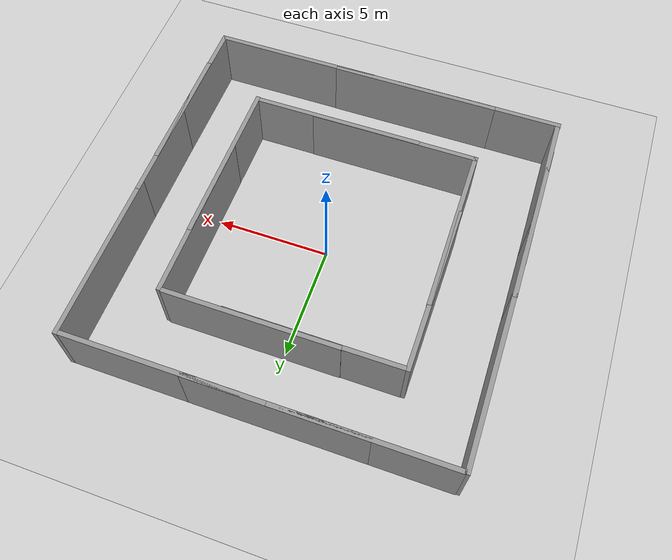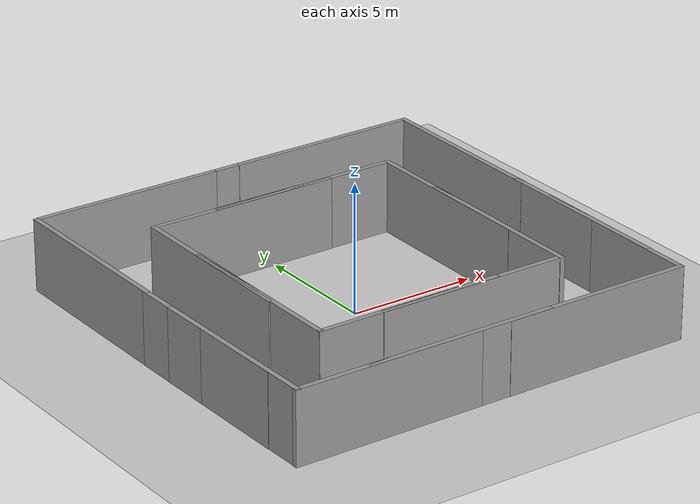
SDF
<sdf version="1.6">
 <world name="default">
  <light name="sun" type="directional">
   <pose>0 0 10 0 -0 0</pose>
   <diffuse>0.8 0.8 0.8 1</diffuse>
   <specular>0.1 0.1 0.1 1</specular>
   <attenuation>
    <range>1000</range>
    <constant>0.9</constant>
    <linear>0.01</linear>
    <quadratic>0.001</quadratic>
   </attenuation>
   <direction>-0.5 0.5 -1</direction>
  </light>
  <model name="ground_plane">
   <static>1</static>
   <link name="link">
    <collision name="collision">
     <geometry><plane><normal>0 0 1</normal><size>100 100</size></plane></geometry>
     <surface><friction><ode><mu>100</mu><mu2>50</mu2></ode></friction></surface>
    </collision>
    <visual name="visual">
     <cast_shadows>0</cast_shadows>
     <geometry><plane><normal>0 0 1</normal><size>100 100</size></plane></geometry>
     <material>
      <script><uri>file://media/materials/scripts/gazebo.material</uri><name>Gazebo/Grey</name></script>
     </material>
    </visual>
   </link>
  </model>
  <gravity>0 0 -9.8</gravity>
  <magnetic_field>6e-06 2.3e-05 -4.2e-05</magnetic_field>
  <atmosphere type="adiabatic"/>
  <physics name="default_physics" default="0" type="ode">
   <max_step_size>0.001</max_step_size>
   <real_time_factor>1</real_time_factor>
   <real_time_update_rate>1000</real_time_update_rate>
  </physics>
  <scene><ambient>0.4 0.4 0.4 1</ambient><background>0.7 0.7 0.7 1</background><shadows>1</shadows></scene>
  <spherical_coordinates>
   <surface_model>EARTH_WGS84</surface_model>
   <latitude_deg>0</latitude_deg>
   <longitude_deg>0</longitude_deg>
   <elevation>0</elevation>
   <heading_deg>0</heading_deg>
  </spherical_coordinates>
  <model name="grey_wall">
   <static>1</static>
   <link name="link">
    <pose>0 0 1.4 0 -0 0</pose>
    <collision name="collision"><geometry><box><size>7.5 0.2 2.8</size></box></geometry></collision>
    <visual name="visual">
     <cast_shadows>0</cast_shadows>
     <geometry><box><size>7.5 0.2 2.8</size></box></geometry>
     <material>
      <script>
       <uri>model://grey_wall/materials/scripts</uri>
       <uri>model://grey_wall/materials/textures</uri>
       <name>vrc/grey_wall</name>
      </script>
     </material>
    </visual>
   </link>
   <pose>1.31352 5.13782 0 0 -0 0</pose>
  </model>
  <model name="grey_wall_0">
   <static>1</static>
   <link name="link">
    <pose>0 0 1.4 0 -0 0</pose>
    <collision name="collision"><geometry><box><size>7.5 0.2 2.8</size></box></geometry></collision>
    <visual name="visual">
     <cast_shadows>0</cast_shadows>
     <geometry><box><size>7.5 0.2 2.8</size></box></geometry>
     <material>
      <script>
       <uri>model://grey_wall/materials/scripts</uri>
       <uri>model://grey_wall/materials/textures</uri>
       <name>vrc/grey_wall</name>
      </script>
     </material>
    </visual>
   </link>
   <pose>-1.21491 5.11681 0 0 -0 0</pose>
  </model>
  <model name="grey_wall_1">
   <static>1</static>
   <link name="link">
    <pose>0 0 1.4 0 -0 0</pose>
    <collision name="collision"><geometry><box><size>7.5 0.2 2.8</size></box></geometry></collision>
    <visual name="visual">
     <cast_shadows>0</cast_shadows>
     <geometry><box><size>7.5 0.2 2.8</size></box></geometry>
     <material>
      <script>
       <uri>model://grey_wall/materials/scripts</uri>
       <uri>model://grey_wall/materials/textures</uri>
       <name>vrc/grey_wall</name>
      </script>
     </material>
    </visual>
   </link>
   <pose>4.22219 8.10261 0 0 -0 0</pose>
  </model>
  <model name="grey_wall_2">
   <static>1</static>
   <link name="link">
    <pose>0 0 1.4 0 -0 0</pose>
    <collision name="collision"><geometry><box><size>7.5 0.2 2.8</size></box></geometry></collision>
    <visual name="visual">
     <cast_shadows>0</cast_shadows>
     <geometry><box><size>7.5 0.2 2.8</size></box></geometry>
     <material>
      <script>
       <uri>model://grey_wall/materials/scripts</uri>
       <uri>model://grey_wall/materials/textures</uri>
       <name>vrc/grey_wall</name>
      </script>
     </material>
    </visual>
   </link>
   <pose>-0.830095 8.10611 0 0 -0 0</pose>
  </model>
  <model name="grey_wall_3">
   <static>1</static>
   <link name="link">
    <pose>0 0 1.4 0 -0 0</pose>
    <collision name="collision"><geometry><box><size>7.5 0.2 2.8</size></box></geometry></collision>
    <visual name="visual">
     <cast_shadows>0</cast_shadows>
     <geometry><box><size>7.5 0.2 2.8</size></box></geometry>
     <material>
      <script>
       <uri>model://grey_wall/materials/scripts</uri>
       <uri>model://grey_wall/materials/textures</uri>
       <name>vrc/grey_wall</name>
      </script>
     </material>
    </visual>
   </link>
   <pose>-4.28095 8.10395 0 0 -0 0</pose>
  </model>
  <model name="grey_wall_4">
   <static>1</static>
   <link name="link">
    <pose>0 0 1.4 0 -0 0</pose>
    <collision name="collision"><geometry><box><size>7.5 0.2 2.8</size></box></geometry></collision>
    <visual name="visual">
     <cast_shadows>0</cast_shadows>
     <geometry><box><size>7.5 0.2 2.8</size></box></geometry>
     <material>
      <script>
       <uri>model://grey_wall/materials/scripts</uri>
       <uri>model://grey_wall/materials/textures</uri>
       <name>vrc/grey_wall</name>
      </script>
     </material>
    </visual>
   </link>
   <pose>1.23321 -5.11961 0 0 -0 0</pose>
  </model>
  <model name="grey_wall_5">
   <static>1</static>
   <link name="link">
    <pose>0 0 1.4 0 -0 0</pose>
    <collision name="collision"><geometry><box><size>7.5 0.2 2.8</size></box></geometry></collision>
    <visual name="visual">
     <cast_shadows>0</cast_shadows>
     <geometry><box><size>7.5 0.2 2.8</size></box></geometry>
     <material>
      <script>
       <uri>model://grey_wall/materials/scripts</uri>
       <uri>model://grey_wall/materials/textures</uri>
       <name>vrc/grey_wall</name>
      </script>
     </material>
    </visual>
   </link>
   <pose>-1.37014 -5.1027 0 0 -0 0</pose>
  </model>
  <model name="grey_wall_6">
   <static>1</static>
   <link name="link">
    <pose>0 0 1.4 0 -0 0</pose>
    <collision name="collision"><geometry><box><size>7.5 0.2 2.8</size></box></geometry></collision>
    <visual name="visual">
     <cast_shadows>0</cast_shadows>
     <geometry><box><size>7.5 0.2 2.8</size></box></geometry>
     <material>
      <script>
       <uri>model://grey_wall/materials/scripts</uri>
       <uri>model://grey_wall/materials/textures</uri>
       <name>vrc/grey_wall</name>
      </script>
     </material>
    </visual>
   </link>
   <pose>5.11988 1.44858 0 0 0 -1.57705</pose>
  </model>
  <model name="grey_wall_7">
   <static>1</static>
   <link name="link">
    <pose>0 0 1.4 0 -0 0</pose>
    <collision name="collision"><geometry><box><size>7.5 0.2 2.8</size></box></geometry></collision>
    <visual name="visual">
     <cast_shadows>0</cast_shadows>
     <geometry><box><size>7.5 0.2 2.8</size></box></geometry>
     <material>
      <script>
       <uri>model://grey_wall/materials/scripts</uri>
       <uri>model://grey_wall/materials/textures</uri>
       <name>vrc/grey_wall</name>
      </script>
     </material>
    </visual>
   </link>
   <pose>5.11279 -1.49225 0 0 0 -1.57923</pose>
  </model>
  <model name="grey_wall_8">
   <static>1</static>
   <link name="link">
    <pose>0 0 1.4 0 -0 0</pose>
    <collision name="collision"><geometry><box><size>7.5 0.2 2.8</size></box></geometry></collision>
    <visual name="visual">
     <cast_shadows>0</cast_shadows>
     <geometry><box><size>7.5 0.2 2.8</size></box></geometry>
     <material>
      <script>
       <uri>model://grey_wall/materials/scripts</uri>
       <uri>model://grey_wall/materials/textures</uri>
       <name>vrc/grey_wall</name>
      </script>
     </material>
    </visual>
   </link>
   <pose>-5.0625 1.45861 0 0 0 -1.57662</pose>
  </model>
  <model name="grey_wall_9">
   <static>1</static>
   <link name="link">
    <pose>0 0 1.4 0 -0 0</pose>
    <collision name="collision"><geometry><box><size>7.5 0.2 2.8</size></box></geometry></collision>
    <visual name="visual">
     <cast_shadows>0</cast_shadows>
     <geometry><box><size>7.5 0.2 2.8</size></box></geometry>
     <material>
      <script>
       <uri>model://grey_wall/materials/scripts</uri>
       <uri>model://grey_wall/materials/textures</uri>
       <name>vrc/grey_wall</name>
      </script>
     </material>
    </visual>
   </link>
   <pose>-5.03584 -1.44679 0 0 0 -1.56899</pose>
  </model>
  <model name="grey_wall_10">
   <static>1</static>
   <link name="link">
    <pose>0 0 1.4 0 -0 0</pose>
    <collision name="collision"><geometry><box><size>7.5 0.2 2.8</size></box></geometry></collision>
    <visual name="visual">
     <cast_shadows>0</cast_shadows>
     <geometry><box><size>7.5 0.2 2.8</size></box></geometry>
     <material>
      <script>
       <uri>model://grey_wall/materials/scripts</uri>
       <uri>model://grey_wall/materials/textures</uri>
       <name>vrc/grey_wall</name>
      </script>
     </material>
    </visual>
   </link>
   <pose>4.28598 -8.12157 0 0 -0 0</pose>
  </model>
  <model name="grey_wall_11">
   <static>1</static>
   <link name="link">
    <pose>0 0 1.4 0 -0 0</pose>
    <collision name="collision"><geometry><box><size>7.5 0.2 2.8</size></box></geometry></collision>
    <visual name="visual">
     <cast_shadows>0</cast_shadows>
     <geometry><box><size>7.5 0.2 2.8</size></box></geometry>
     <material>
      <script>
       <uri>model://grey_wall/materials/scripts</uri>
       <uri>model://grey_wall/materials/textures</uri>
       <name>vrc/grey_wall</name>
      </script>
     </material>
    </visual>
   </link>
   <pose>-1.43544 -8.10932 0 0 -0 0</pose>
  </model>
  <model name="grey_wall_12">
   <static>1</static>
   <link name="link">
    <pose>0 0 1.4 0 -0 0</pose>
    <collision name="collision"><geometry><box><size>7.5 0.2 2.8</size></box></geometry></collision>
    <visual name="visual">
     <cast_shadows>0</cast_shadows>
     <geometry><box><size>7.5 0.2 2.8</size></box></geometry>
     <material>
      <script>
       <uri>model://grey_wall/materials/scripts</uri>
       <uri>model://grey_wall/materials/textures</uri>
       <name>vrc/grey_wall</name>
      </script>
     </material>
    </visual>
   </link>
   <pose>-4.39939 -8.11839 0 0 -0 0</pose>
  </model>
  <model name="grey_wall_13">
   <static>1</static>
   <link name="link">
    <pose>0 0 1.4 0 -0 0</pose>
    <collision name="collision"><geometry><box><size>7.5 0.2 2.8</size></box></geometry></collision>
    <visual name="visual">
     <cast_shadows>0</cast_shadows>
     <geometry><box><size>7.5 0.2 2.8</size></box></geometry>
     <material>
      <script>
       <uri>model://grey_wall/materials/scripts</uri>
       <uri>model://grey_wall/materials/textures</uri>
       <name>vrc/grey_wall</name>
      </script>
     </material>
    </visual>
   </link>
   <pose>8.04242 4.45398 0 0 0 -1.57535</pose>
  </model>
  <model name="grey_wall_14">
   <static>1</static>
   <link name="link">
    <pose>0 0 1.4 0 -0 0</pose>
    <collision name="collision"><geometry><box><size>7.5 0.2 2.8</size></box></geometry></collision>
    <visual name="visual">
     <cast_shadows>0</cast_shadows>
     <geometry><box><size>7.5 0.2 2.8</size></box></geometry>
     <material>
      <script>
       <uri>model://grey_wall/materials/scripts</uri>
       <uri>model://grey_wall/materials/textures</uri>
       <name>vrc/grey_wall</name>
      </script>
     </material>
    </visual>
   </link>
   <pose>8.01071 -2.62658 0 0 0 -1.57588</pose>
  </model>
  <model name="grey_wall_15">
   <static>1</static>
   <link name="link">
    <pose>0 0 1.4 0 -0 0</pose>
    <collision name="collision"><geometry><box><size>7.5 0.2 2.8</size></box></geometry></collision>
    <visual name="visual">
     <cast_shadows>0</cast_shadows>
     <geometry><box><size>7.5 0.2 2.8</size></box></geometry>
     <material>
      <script>
       <uri>model://grey_wall/materials/scripts</uri>
       <uri>model://grey_wall/materials/textures</uri>
       <name>vrc/grey_wall</name>
      </script>
     </material>
    </visual>
   </link>
   <pose>7.99534 -4.45768 0 0 0 -1.58143</pose>
  </model>
  <model name="grey_wall_16">
   <static>1</static>
   <link name="link">
    <pose>0 0 1.4 0 -0 0</pose>
    <collision name="collision"><geometry><box><size>7.5 0.2 2.8</size></box></geometry></collision>
    <visual name="visual">
     <cast_shadows>0</cast_shadows>
     <geometry><box><size>7.5 0.2 2.8</size></box></geometry>
     <material>
      <script>
       <uri>model://grey_wall/materials/scripts</uri>
       <uri>model://grey_wall/materials/textures</uri>
       <name>vrc/grey_wall</name>
      </script>
     </material>
    </visual>
   </link>
   <pose>-8.08088 4.42749 0 0 0 -1.5721</pose>
  </model>
  <model name="grey_wall_17">
   <static>1</static>
   <link name="link">
    <pose>0 0 1.4 0 -0 0</pose>
    <collision name="collision"><geometry><box><size>7.5 0.2 2.8</size></box></geometry></collision>
    <visual name="visual">
     <cast_shadows>0</cast_shadows>
     <geometry><box><size>7.5 0.2 2.8</size></box></geometry>
     <material>
      <script>
       <uri>model://grey_wall/materials/scripts</uri>
       <uri>model://grey_wall/materials/textures</uri>
       <name>vrc/grey_wall</name>
      </script>
     </material>
    </visual>
   </link>
   <pose>-8.07521 -2.87746 0 0 0 -1.56519</pose>
  </model>
  <model name="grey_wall_18">
   <static>1</static>
   <link name="link">
    <pose>0 0 1.4 0 -0 0</pose>
    <collision name="collision"><geometry><box><size>7.5 0.2 2.8</size></box></geometry></collision>
    <visual name="visual">
     <cast_shadows>0</cast_shadows>
     <geometry><box><size>7.5 0.2 2.8</size></box></geometry>
     <material>
      <script>
       <uri>model://grey_wall/materials/scripts</uri>
       <uri>model://grey_wall/materials/textures</uri>
       <name>vrc/grey_wall</name>
      </script>
     </material>
    </visual>
   </link>
   <pose>-8.05942 -4.43858 0 0 0 -1.5612</pose>
  </model>
 </world>
</sdf>
